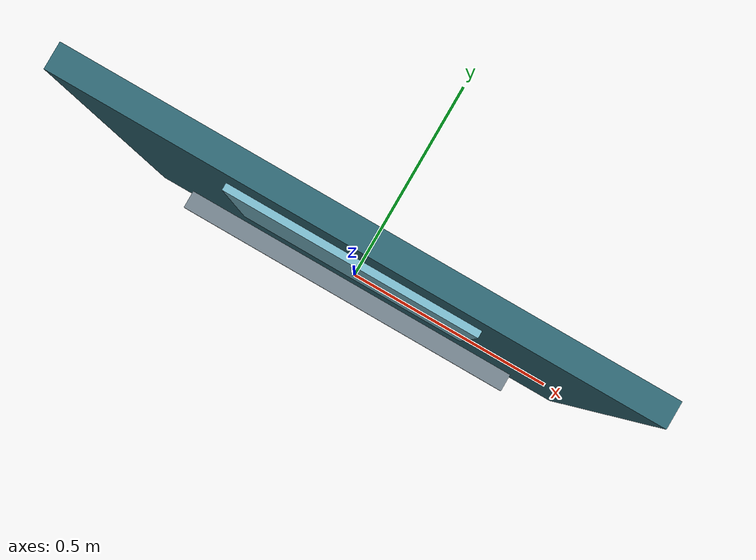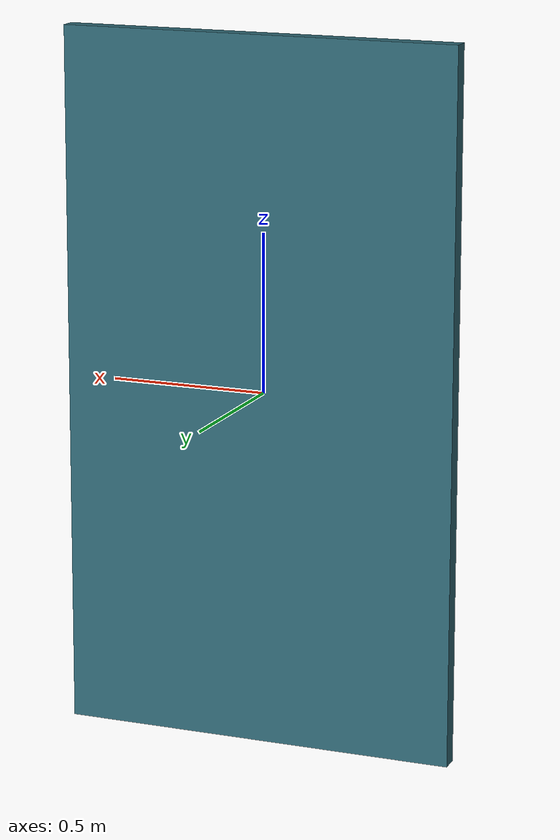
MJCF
<?xml version='1.0' encoding='utf-8'?>
<mujoco model="Staff entry door | static procedural reference">
  <visual>
    <global offwidth="1000" offheight="600" />
  </visual>
  <asset>
    <texture type="skybox" builtin="gradient" rgb1=".92 .95 .97" rgb2=".70 .78 .84" width="512" height="3072" />
  </asset>
  <worldbody>
    <geom type="box" size="0.63 0.028 1.11" pos="0 0.032 0" quat="1 0 0 0" rgba="0.180000007 0.400000006 0.449999988 1" contype="0" conaffinity="0" />
    <geom type="box" size="0.28 0.008 0.37" pos="0 -0.005 0.45" quat="1 0 0 0" rgba="0.479999989 0.730000019 0.800000012 1" contype="0" conaffinity="0" />
    <geom type="box" size="0.43 0.022 0.015" pos="0 -0.038 -0.13" quat="1 0 0 0" rgba="0.449999988 0.50999999 0.550000012 1" contype="0" conaffinity="0" />
  </worldbody>
</mujoco>
